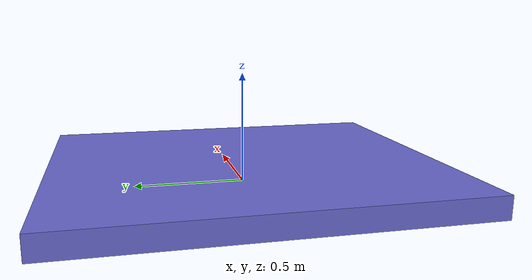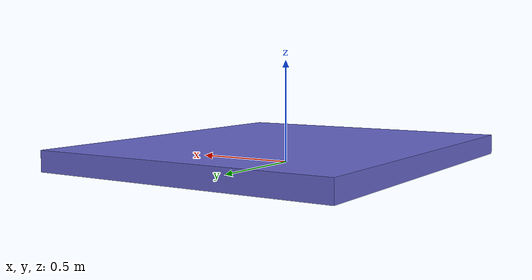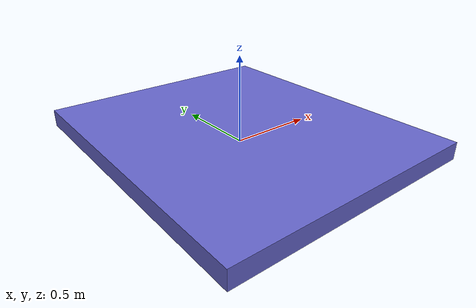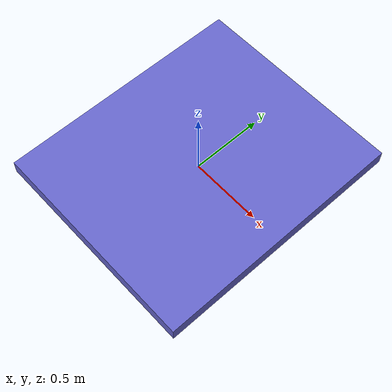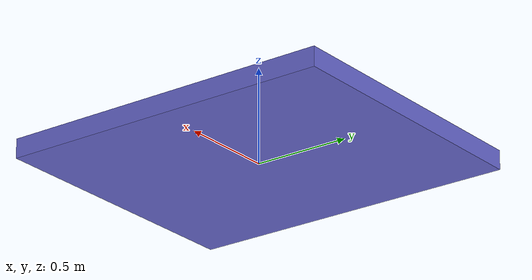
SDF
<sdf version="1.6">
    <model name="car_hood">
        <allow_auto_disable>true</allow_auto_disable>
        <link name="link_1">
            <kinematic>true</kinematic>
            <pose>0 0 0.05 0 0 0 0</pose>
            <visual name="visual">
                <geometry>
                    <box>
                        <size>1.5 1.75 0.1</size>
                    </box>
                </geometry>
                <material>
                    <ambient>0.4 0.4 0.8 1.0</ambient>
                    <diffuse>0.4 0.4 0.8 1.0</diffuse>
                </material>
            </visual>
            <collision name="collision">
                <geometry>
                    <box>
                        <size>1.5 1.75 0.1</size>
                    </box>
                </geometry>
            </collision>
        </link>
    </model>
</sdf>
